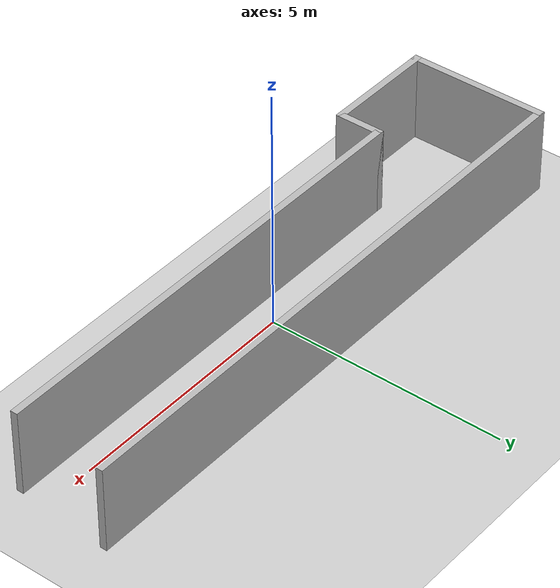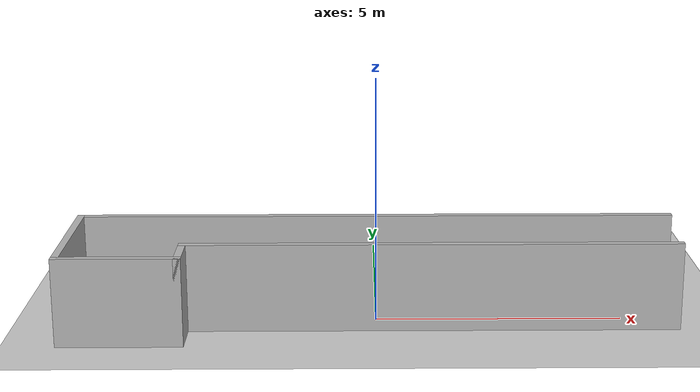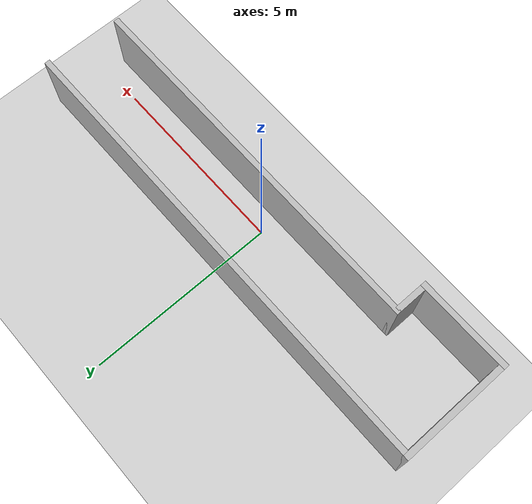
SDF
<?xml version="1.0" ?>
<sdf version="1.5">
    <world name="default">
        <!-- A global light source -->
        <include>
            <uri>model://sun</uri>
        </include>
        <!-- A ground plane -->
        <include>
		<uri>model://ground_plane</uri>
        </include>
	<include>
	    <uri>model://corridor</uri>
	    <pose>0 0 -0.35 0 0 0</pose>
	</include>
    </world>
</sdf>

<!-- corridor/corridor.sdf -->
<sdf version='1.6'>
  <model name='corridor'>
    <pose frame=''>-1.055 -2.555 0 0 -0 0</pose>
    <link name='Wall_0'>
      <collision name='Wall_0_Collision'>
        <geometry>
          <box>
            <size>12.5 0.15 1.8</size>
          </box>
        </geometry>
        <pose frame=''>0 0 1.25 0 -0 0</pose>
      </collision>
      <visual name='Wall_0_Visual'>
        <pose frame=''>0 0 1.25 0 -0 0</pose>
        <geometry>
          <box>
            <size>12.5 0.15 1.8</size>
          </box>
        </geometry>
        <material>
			    <script>
				<uri>model://corridor/materials/scripts</uri>
				<uri>model://corridor/materials/textures</uri>
				<name>wallMat/Wall0</name>
			    </script>
			</material>
        <meta>
          <layer>0</layer>
        </meta>
      </visual>
      <pose frame=''>0 1.425 0 0 -0 0</pose>
    </link>
    <link name='Wall_1'>
      <collision name='Wall_1_Collision'>
        <geometry>
          <box>
            <size>3 0.15 1.8</size>
          </box>
        </geometry>
        <pose frame=''>0 0 1.25 0 -0 0</pose>
      </collision>
      <visual name='Wall_1_Visual'>
        <pose frame=''>0 0 1.25 0 -0 0</pose>
        <geometry>
          <box>
            <size>3 0.15 1.8</size>
          </box>
        </geometry>
        <material>
			    <script>
				<uri>model://corridor/materials/scripts</uri>
				<uri>model://corridor/materials/textures</uri>
				<name>wallMat/Wall1</name>
			    </script>
			</material>
        <meta>
          <layer>0</layer>
        </meta>
      </visual>
      <pose frame=''>-6.175 0 0 0 0 -1.5708</pose>
    </link>
    <link name='Wall_2'>
      <collision name='Wall_2_Collision'>
        <geometry>
          <box>
            <size>2.5 0.15 1.8</size>
          </box>
        </geometry>
        <pose frame=''>0 0 1.25 0 -0 0</pose>
      </collision>
      <visual name='Wall_2_Visual'>
        <pose frame=''>0 0 1.25 0 -0 0</pose>
        <geometry>
          <box>
            <size>2.5 0.15 1.8</size>
          </box>
        </geometry>
        <material>
			    <script>
				<uri>model://corridor/materials/scripts</uri>
				<uri>model://corridor/materials/textures</uri>
				<name>wallMat/Wall2</name>
			    </script>
			</material>
        <meta>
          <layer>0</layer>
        </meta>
      </visual>
      <pose frame=''>-5 -1.425 0 0 -0 0</pose>
    </link>
    <link name='Wall_3'>
      <collision name='Wall_3_Collision'>
        <geometry>
          <box>
            <size>1 0.15 1.8</size>
          </box>
        </geometry>
        <pose frame=''>0 0 1.25 0 -0 0</pose>
      </collision>
      <visual name='Wall_3_Visual'>
        <pose frame=''>0 0 1.25 0 -0 0</pose>
        <geometry>
          <box>
            <size>1 0.15 1.8</size>
          </box>
        </geometry>
        <material>
			    <script>
				<uri>model://corridor/materials/scripts</uri>
				<uri>model://corridor/materials/textures</uri>
				<name>wallMat/Wall3</name>
			    </script>
			</material>
        <meta>
          <layer>0</layer>
        </meta>
      </visual>
      <pose frame=''>-3.825 -1 0 0 -0 1.5708</pose>
    </link>
    <link name='Wall_4'>
      <collision name='Wall_4_Collision'>
        <geometry>
          <box>
            <size>10 0.15 1.8</size>
          </box>
        </geometry>
        <pose frame=''>0 0 1.25 0 -0 0</pose>
      </collision>
      <visual name='Wall_4_Visual'>
        <pose frame=''>0 0 1.25 0 -0 0</pose>
        <geometry>
          <box>
            <size>10 0.15 1.8</size>
          </box>
        </geometry>
        <material>
			    <script>
				<uri>model://corridor/materials/scripts</uri>
				<uri>model://corridor/materials/textures</uri>
				<name>wallMat/Wall4</name>
			    </script>
			</material>
        <meta>
          <layer>0</layer>
        </meta>
      </visual>
      <pose frame=''>1.1 -0.575 0 0 -0 0</pose>
    </link>
    <static>1</static>
  </model>
</sdf>
